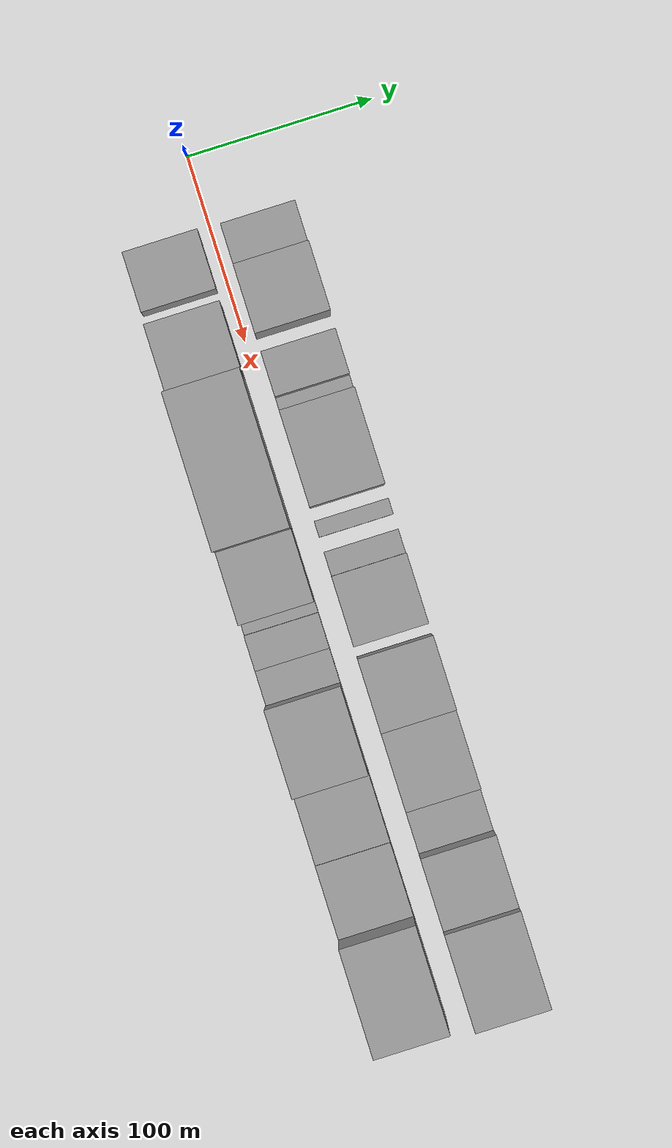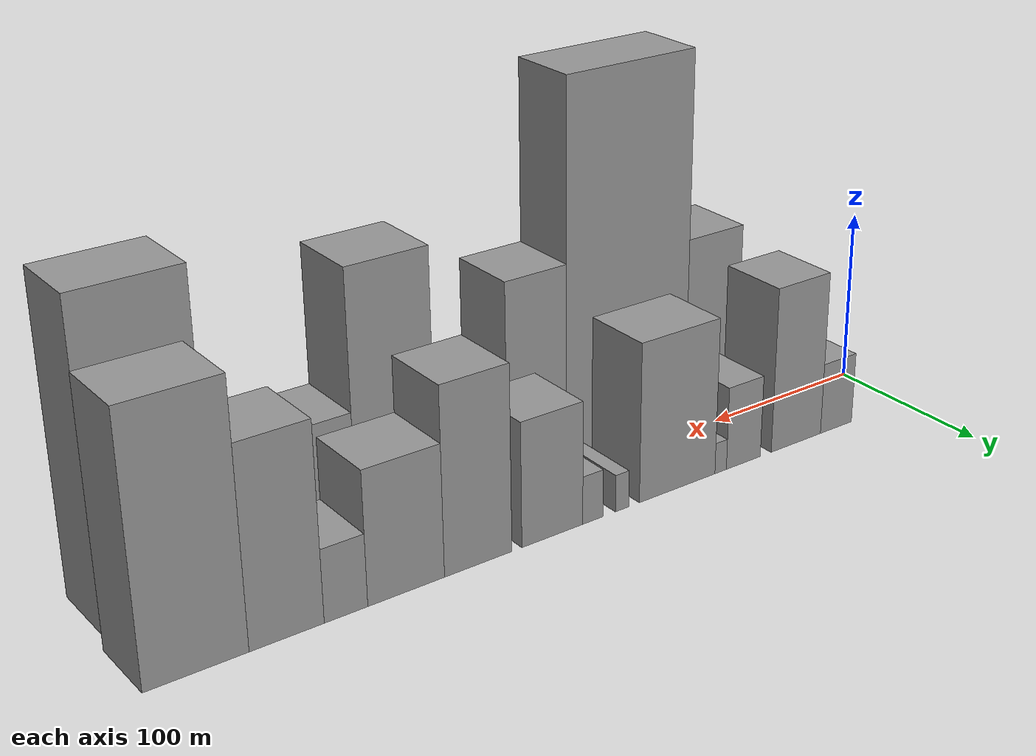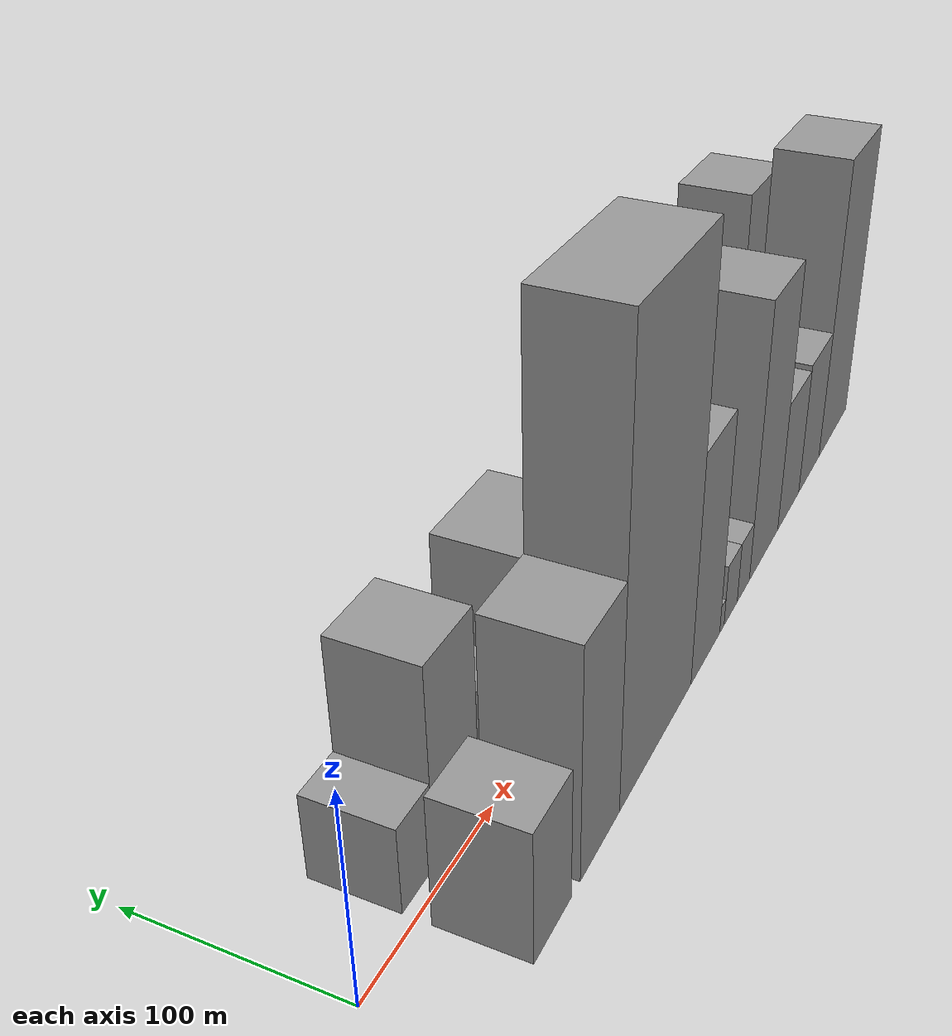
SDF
<sdf version="1.6">
 <world name="default">
  <scene>
   <sky><clouds><speed>12</speed></clouds></sky>
   <ambient>0.4 0.4 0.4 1</ambient>
   <background>0.7 0.7 0.7 1</background>
   <shadows>1</shadows>
  </scene>
  <gravity>0 0 -9.8066</gravity>
  <magnetic_field>6e-06 2.3e-05 -4.2e-05</magnetic_field>
  <physics default="0" name="default_physics" type="ode">
   <ode>
    <solver>
     <type>quick</type>
     <iters>10</iters>
     <sor>1.0</sor>
     <use_dynamic_moi_rescaling>0</use_dynamic_moi_rescaling>
    </solver>
    <constraints>
     <cfm>0</cfm>
     <erp>0.2</erp>
     <contact_max_correcting_vel>100</contact_max_correcting_vel>
     <contact_surface_layer>0.001</contact_surface_layer>
    </constraints>
   </ode>
   <max_step_size>0.004</max_step_size>
   <real_time_factor>1</real_time_factor>
   <real_time_update_rate>250</real_time_update_rate>
  </physics>
  <light name="sun" type="directional">
   <pose>0 0 10 0 0 0</pose>
   <diffuse>0.8 0.8 0.8 1</diffuse>
   <specular>0.2 0.2 0.2 1</specular>
   <attenuation>
    <range>1000</range>
    <constant>0.9</constant>
    <linear>0.01</linear>
    <quadratic>0.001</quadratic>
   </attenuation>
   <direction>-0.5 0.1 -0.9</direction>
  </light>
  <model name="building_1">
   <static>1</static>
   <pose>51.9715 26.0000 0 0.000000 0.000000 1.570796</pose>
   <link name="link">
    <pose>0 0 21.00 0 0 0</pose>
    <collision name="collision"><geometry><box><size>40.0000 23.9430 42.0000</size></box></geometry></collision>
    <visual name="visual">
     <cast_shadows>0</cast_shadows>
     <geometry><box><size>40.0000 23.9430 42.0000</size></box></geometry>
     <material>
      <script>
       <uri>model://grey_wall/materials/scripts</uri>
       <uri>model://grey_wall/materials/textures</uri>
       <name>vrc/grey_wall</name>
      </script>
     </material>
    </visual>
   </link>
  </model>
  <model name="building_2">
   <static>1</static>
   <pose>82.3610 26.0000 0 0.000000 0.000000 1.570796</pose>
   <link name="link">
    <pose>0 0 48.00 0 0 0</pose>
    <collision name="collision"><geometry><box><size>40.0000 36.8362 96.0000</size></box></geometry></collision>
    <visual name="visual">
     <cast_shadows>0</cast_shadows>
     <geometry><box><size>40.0000 36.8362 96.0000</size></box></geometry>
     <material>
      <script>
       <uri>model://grey_wall/materials/scripts</uri>
       <uri>model://grey_wall/materials/textures</uri>
       <name>vrc/grey_wall</name>
      </script>
     </material>
    </visual>
   </link>
  </model>
  <model name="building_3">
   <static>1</static>
   <pose>120.9067 26.0000 0 0.000000 0.000000 1.570796</pose>
   <link name="link">
    <pose>0 0 24.00 0 0 0</pose>
    <collision name="collision"><geometry><box><size>40.0000 24.2551 48.0000</size></box></geometry></collision>
    <visual name="visual">
     <cast_shadows>0</cast_shadows>
     <geometry><box><size>40.0000 24.2551 48.0000</size></box></geometry>
     <material>
      <script>
       <uri>model://grey_wall/materials/scripts</uri>
       <uri>model://grey_wall/materials/textures</uri>
       <name>vrc/grey_wall</name>
      </script>
     </material>
    </visual>
   </link>
  </model>
  <model name="building_4">
   <static>1</static>
   <pose>137.0696 26.0000 0 0.000000 0.000000 1.570796</pose>
   <link name="link">
    <pose>0 0 9.00 0 0 0</pose>
    <collision name="collision"><geometry><box><size>40.0000 8.0706 18.0000</size></box></geometry></collision>
    <visual name="visual">
     <cast_shadows>0</cast_shadows>
     <geometry><box><size>40.0000 8.0706 18.0000</size></box></geometry>
     <material>
      <script>
       <uri>model://grey_wall/materials/scripts</uri>
       <uri>model://grey_wall/materials/textures</uri>
       <name>vrc/grey_wall</name>
      </script>
     </material>
    </visual>
   </link>
  </model>
  <model name="building_5">
   <static>1</static>
   <pose>166.7779 26.0000 0 0.000000 0.000000 1.570796</pose>
   <link name="link">
    <pose>0 0 45.00 0 0 0</pose>
    <collision name="collision"><geometry><box><size>40.0000 51.3461 90.0000</size></box></geometry></collision>
    <visual name="visual">
     <cast_shadows>0</cast_shadows>
     <geometry><box><size>40.0000 51.3461 90.0000</size></box></geometry>
     <material>
      <script>
       <uri>model://grey_wall/materials/scripts</uri>
       <uri>model://grey_wall/materials/textures</uri>
       <name>vrc/grey_wall</name>
      </script>
     </material>
    </visual>
   </link>
  </model>
  <model name="building_6">
   <static>1</static>
   <pose>203.7798 26.0000 0 0.000000 0.000000 1.570796</pose>
   <link name="link">
    <pose>0 0 10.50 0 0 0</pose>
    <collision name="collision"><geometry><box><size>40.0000 8.6576 21.0000</size></box></geometry></collision>
    <visual name="visual">
     <cast_shadows>0</cast_shadows>
     <geometry><box><size>40.0000 8.6576 21.0000</size></box></geometry>
     <material>
      <script>
       <uri>model://grey_wall/materials/scripts</uri>
       <uri>model://grey_wall/materials/textures</uri>
       <name>vrc/grey_wall</name>
      </script>
     </material>
    </visual>
   </link>
  </model>
  <model name="building_7">
   <static>1</static>
   <pose>222.5685 26.0000 0 0.000000 0.000000 1.570796</pose>
   <link name="link">
    <pose>0 0 13.50 0 0 0</pose>
    <collision name="collision"><geometry><box><size>40.0000 12.9198 27.0000</size></box></geometry></collision>
    <visual name="visual">
     <cast_shadows>0</cast_shadows>
     <geometry><box><size>40.0000 12.9198 27.0000</size></box></geometry>
     <material>
      <script>
       <uri>model://grey_wall/materials/scripts</uri>
       <uri>model://grey_wall/materials/textures</uri>
       <name>vrc/grey_wall</name>
      </script>
     </material>
    </visual>
   </link>
  </model>
  <model name="building_8">
   <static>1</static>
   <pose>247.8269 26.0000 0 0.000000 0.000000 1.570796</pose>
   <link name="link">
    <pose>0 0 34.50 0 0 0</pose>
    <collision name="collision"><geometry><box><size>40.0000 37.5970 69.0000</size></box></geometry></collision>
    <visual name="visual">
     <cast_shadows>0</cast_shadows>
     <geometry><box><size>40.0000 37.5970 69.0000</size></box></geometry>
     <material>
      <script>
       <uri>model://grey_wall/materials/scripts</uri>
       <uri>model://grey_wall/materials/textures</uri>
       <name>vrc/grey_wall</name>
      </script>
     </material>
    </visual>
   </link>
  </model>
  <model name="building_9">
   <static>1</static>
   <pose>292.3299 26.0000 0 0.000000 0.000000 1.570796</pose>
   <link name="link">
    <pose>0 0 51.00 0 0 0</pose>
    <collision name="collision"><geometry><box><size>40.0000 39.4089 102.0000</size></box></geometry></collision>
    <visual name="visual">
     <cast_shadows>0</cast_shadows>
     <geometry><box><size>40.0000 39.4089 102.0000</size></box></geometry>
     <material>
      <script>
       <uri>model://grey_wall/materials/scripts</uri>
       <uri>model://grey_wall/materials/textures</uri>
       <name>vrc/grey_wall</name>
      </script>
     </material>
    </visual>
   </link>
  </model>
  <model name="building_10">
   <static>1</static>
   <pose>333.3334 26.0000 0 0.000000 0.000000 1.570796</pose>
   <link name="link">
    <pose>0 0 36.00 0 0 0</pose>
    <collision name="collision"><geometry><box><size>40.0000 42.5983 72.0000</size></box></geometry></collision>
    <visual name="visual">
     <cast_shadows>0</cast_shadows>
     <geometry><box><size>40.0000 42.5983 72.0000</size></box></geometry>
     <material>
      <script>
       <uri>model://grey_wall/materials/scripts</uri>
       <uri>model://grey_wall/materials/textures</uri>
       <name>vrc/grey_wall</name>
      </script>
     </material>
    </visual>
   </link>
  </model>
  <model name="building_11">
   <static>1</static>
   <pose>366.2044 26.0000 0 0.000000 0.000000 1.570796</pose>
   <link name="link">
    <pose>0 0 19.50 0 0 0</pose>
    <collision name="collision"><geometry><box><size>40.0000 23.1437 39.0000</size></box></geometry></collision>
    <visual name="visual">
     <cast_shadows>0</cast_shadows>
     <geometry><box><size>40.0000 23.1437 39.0000</size></box></geometry>
     <material>
      <script>
       <uri>model://grey_wall/materials/scripts</uri>
       <uri>model://grey_wall/materials/textures</uri>
       <name>vrc/grey_wall</name>
      </script>
     </material>
    </visual>
   </link>
  </model>
  <model name="building_12">
   <static>1</static>
   <pose>396.9869 26.0000 0 0.000000 0.000000 1.570796</pose>
   <link name="link">
    <pose>0 0 52.50 0 0 0</pose>
    <collision name="collision"><geometry><box><size>40.0000 38.4212 105.0000</size></box></geometry></collision>
    <visual name="visual">
     <cast_shadows>0</cast_shadows>
     <geometry><box><size>40.0000 38.4212 105.0000</size></box></geometry>
     <material>
      <script>
       <uri>model://grey_wall/materials/scripts</uri>
       <uri>model://grey_wall/materials/textures</uri>
       <name>vrc/grey_wall</name>
      </script>
     </material>
    </visual>
   </link>
  </model>
  <model name="building_13">
   <static>1</static>
   <pose>441.9548 26.0000 0 0.000000 0.000000 1.570796</pose>
   <link name="link">
    <pose>0 0 69.00 0 0 0</pose>
    <collision name="collision"><geometry><box><size>40.0000 51.5146 138.0000</size></box></geometry></collision>
    <visual name="visual">
     <cast_shadows>0</cast_shadows>
     <geometry><box><size>40.0000 51.5146 138.0000</size></box></geometry>
     <material>
      <script>
       <uri>model://grey_wall/materials/scripts</uri>
       <uri>model://grey_wall/materials/textures</uri>
       <name>vrc/grey_wall</name>
      </script>
     </material>
    </visual>
   </link>
  </model>
  <model name="building_14">
   <static>1</static>
   <pose>56.0325 -26.0000 0 0.000000 0.000000 1.570796</pose>
   <link name="link">
    <pose>0 0 31.50 0 0 0</pose>
    <collision name="collision"><geometry><box><size>40.0000 32.0649 63.0000</size></box></geometry></collision>
    <visual name="visual">
     <cast_shadows>0</cast_shadows>
     <geometry><box><size>40.0000 32.0649 63.0000</size></box></geometry>
     <material>
      <script>
       <uri>model://grey_wall/materials/scripts</uri>
       <uri>model://grey_wall/materials/textures</uri>
       <name>vrc/grey_wall</name>
      </script>
     </material>
    </visual>
   </link>
  </model>
  <model name="building_15">
   <static>1</static>
   <pose>99.0737 -26.0000 0 0.000000 0.000000 1.570796</pose>
   <link name="link">
    <pose>0 0 55.50 0 0 0</pose>
    <collision name="collision"><geometry><box><size>40.0000 38.0176 111.0000</size></box></geometry></collision>
    <visual name="visual">
     <cast_shadows>0</cast_shadows>
     <geometry><box><size>40.0000 38.0176 111.0000</size></box></geometry>
     <material>
      <script>
       <uri>model://grey_wall/materials/scripts</uri>
       <uri>model://grey_wall/materials/textures</uri>
       <name>vrc/grey_wall</name>
      </script>
     </material>
    </visual>
   </link>
  </model>
  <model name="building_16">
   <static>1</static>
   <pose>159.0744 -26.0000 0 0.000000 0.000000 1.570796</pose>
   <link name="link">
    <pose>0 0 108.00 0 0 0</pose>
    <collision name="collision"><geometry><box><size>40.0000 81.9837 216.0000</size></box></geometry></collision>
    <visual name="visual">
     <cast_shadows>0</cast_shadows>
     <geometry><box><size>40.0000 81.9837 216.0000</size></box></geometry>
     <material>
      <script>
       <uri>model://grey_wall/materials/scripts</uri>
       <uri>model://grey_wall/materials/textures</uri>
       <name>vrc/grey_wall</name>
      </script>
     </material>
    </visual>
   </link>
  </model>
  <model name="building_17">
   <static>1</static>
   <pose>219.2657 -26.0000 0 0.000000 0.000000 1.570796</pose>
   <link name="link">
    <pose>0 0 58.50 0 0 0</pose>
    <collision name="collision"><geometry><box><size>40.0000 38.3988 117.0000</size></box></geometry></collision>
    <visual name="visual">
     <cast_shadows>0</cast_shadows>
     <geometry><box><size>40.0000 38.3988 117.0000</size></box></geometry>
     <material>
      <script>
       <uri>model://grey_wall/materials/scripts</uri>
       <uri>model://grey_wall/materials/textures</uri>
       <name>vrc/grey_wall</name>
      </script>
     </material>
    </visual>
   </link>
  </model>
  <model name="building_18">
   <static>1</static>
   <pose>241.5494 -26.0000 0 0.000000 0.000000 1.570796</pose>
   <link name="link">
    <pose>0 0 7.50 0 0 0</pose>
    <collision name="collision"><geometry><box><size>40.0000 6.1686 15.0000</size></box></geometry></collision>
    <visual name="visual">
     <cast_shadows>0</cast_shadows>
     <geometry><box><size>40.0000 6.1686 15.0000</size></box></geometry>
     <material>
      <script>
       <uri>model://grey_wall/materials/scripts</uri>
       <uri>model://grey_wall/materials/textures</uri>
       <name>vrc/grey_wall</name>
      </script>
     </material>
    </visual>
   </link>
  </model>
  <model name="building_19">
   <static>1</static>
   <pose>254.2093 -26.0000 0 0.000000 0.000000 1.570796</pose>
   <link name="link">
    <pose>0 0 16.50 0 0 0</pose>
    <collision name="collision"><geometry><box><size>40.0000 19.1513 33.0000</size></box></geometry></collision>
    <visual name="visual">
     <cast_shadows>0</cast_shadows>
     <geometry><box><size>40.0000 19.1513 33.0000</size></box></geometry>
     <material>
      <script>
       <uri>model://grey_wall/materials/scripts</uri>
       <uri>model://grey_wall/materials/textures</uri>
       <name>vrc/grey_wall</name>
      </script>
     </material>
    </visual>
   </link>
  </model>
  <model name="building_20">
   <static>1</static>
   <pose>273.0281 -26.0000 0 0.000000 0.000000 1.570796</pose>
   <link name="link">
    <pose>0 0 16.50 0 0 0</pose>
    <collision name="collision"><geometry><box><size>40.0000 18.4862 33.0000</size></box></geometry></collision>
    <visual name="visual">
     <cast_shadows>0</cast_shadows>
     <geometry><box><size>40.0000 18.4862 33.0000</size></box></geometry>
     <material>
      <script>
       <uri>model://grey_wall/materials/scripts</uri>
       <uri>model://grey_wall/materials/textures</uri>
       <name>vrc/grey_wall</name>
      </script>
     </material>
    </visual>
   </link>
  </model>
  <model name="building_21">
   <static>1</static>
   <pose>305.5259 -26.0000 0 0.000000 0.000000 1.570796</pose>
   <link name="link">
    <pose>0 0 73.50 0 0 0</pose>
    <collision name="collision"><geometry><box><size>40.0000 46.5095 147.0000</size></box></geometry></collision>
    <visual name="visual">
     <cast_shadows>0</cast_shadows>
     <geometry><box><size>40.0000 46.5095 147.0000</size></box></geometry>
     <material>
      <script>
       <uri>model://grey_wall/materials/scripts</uri>
       <uri>model://grey_wall/materials/textures</uri>
       <name>vrc/grey_wall</name>
      </script>
     </material>
    </visual>
   </link>
  </model>
  <model name="building_22">
   <static>1</static>
   <pose>347.6304 -26.0000 0 0.000000 0.000000 1.570796</pose>
   <link name="link">
    <pose>0 0 36.00 0 0 0</pose>
    <collision name="collision"><geometry><box><size>40.0000 37.6995 72.0000</size></box></geometry></collision>
    <visual name="visual">
     <cast_shadows>0</cast_shadows>
     <geometry><box><size>40.0000 37.6995 72.0000</size></box></geometry>
     <material>
      <script>
       <uri>model://grey_wall/materials/scripts</uri>
       <uri>model://grey_wall/materials/textures</uri>
       <name>vrc/grey_wall</name>
      </script>
     </material>
    </visual>
   </link>
  </model>
  <model name="building_23">
   <static>1</static>
   <pose>386.1064 -26.0000 0 0.000000 0.000000 1.570796</pose>
   <link name="link">
    <pose>0 0 37.50 0 0 0</pose>
    <collision name="collision"><geometry><box><size>40.0000 39.2525 75.0000</size></box></geometry></collision>
    <visual name="visual">
     <cast_shadows>0</cast_shadows>
     <geometry><box><size>40.0000 39.2525 75.0000</size></box></geometry>
     <material>
      <script>
       <uri>model://grey_wall/materials/scripts</uri>
       <uri>model://grey_wall/materials/textures</uri>
       <name>vrc/grey_wall</name>
      </script>
     </material>
    </visual>
   </link>
  </model>
  <model name="building_24">
   <static>1</static>
   <pose>434.3793 -26.0000 0 0.000000 0.000000 1.570796</pose>
   <link name="link">
    <pose>0 0 84.00 0 0 0</pose>
    <collision name="collision"><geometry><box><size>40.0000 57.2933 168.0000</size></box></geometry></collision>
    <visual name="visual">
     <cast_shadows>0</cast_shadows>
     <geometry><box><size>40.0000 57.2933 168.0000</size></box></geometry>
     <material>
      <script>
       <uri>model://grey_wall/materials/scripts</uri>
       <uri>model://grey_wall/materials/textures</uri>
       <name>vrc/grey_wall</name>
      </script>
     </material>
    </visual>
   </link>
  </model>
 </world>
</sdf>
